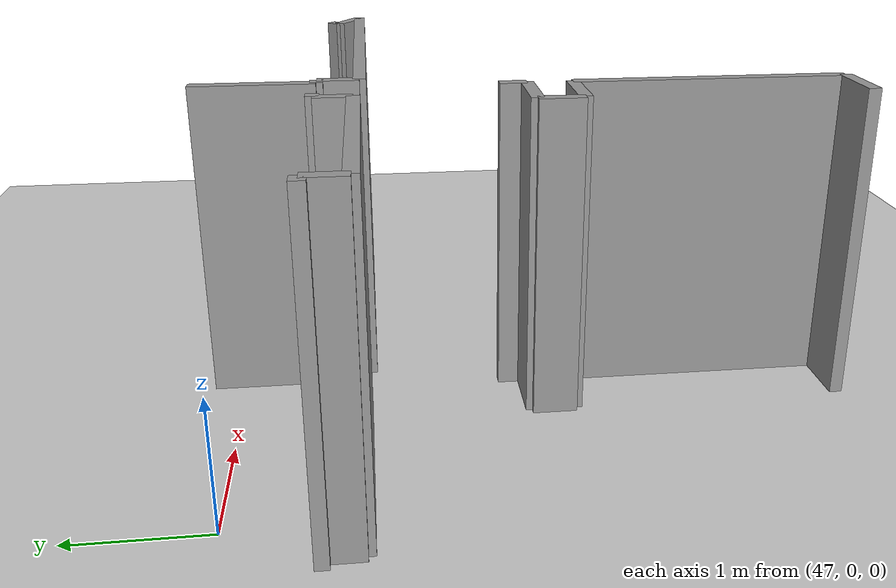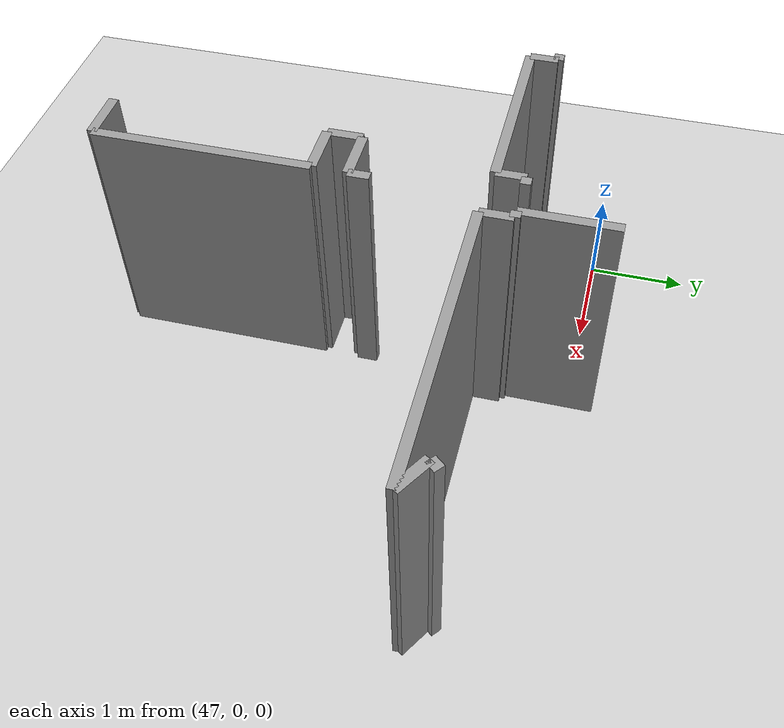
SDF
<sdf version="1.6">
 <world name="default">
  <model name="ground_plane">
   <static>1</static>
   <link name="link">
    <collision name="collision">
     <geometry><plane><normal>0 0 1</normal><size>100 100</size></plane></geometry>
     <surface><friction><ode><mu>100</mu><mu2>50</mu2></ode></friction></surface>
    </collision>
    <visual name="visual">
     <cast_shadows>0</cast_shadows>
     <geometry><plane><normal>0 0 1</normal><size>100 100</size></plane></geometry>
     <material>
      <script><uri>file://media/materials/scripts/gazebo.material</uri><name>Gazebo/Grey</name></script>
     </material>
    </visual>
   </link>
  </model>
  <model name="50010541">
   <static>1</static>
   <link name="Wall_264">
    <collision name="Wall_264_Collision">
     <geometry><box><size>2.94771050995 0.1 2.5</size></box></geometry>
     <pose>1.47385525497 0 1.25 0 0 0</pose>
    </collision>
    <visual name="Wall_264_Visual">
     <pose>1.47385525497 0 1.25 0 0 0</pose>
     <geometry><box><size>2.94771050995 0.1 2.5</size></box></geometry>
     <material>
      <script><uri>file://media/materials/scripts/gazebo.material</uri><name>Gazebo/Grey</name></script>
      <ambient>1 1 1 1</ambient>
     </material>
    </visual>
    <pose>104.962487147 -14.0648445533 0 0 0 3.14159265359</pose>
   </link>
   <link name="Wall_265">
    <collision name="Wall_265_Collision">
     <geometry><box><size>0.321049090424 0.1 2.5</size></box></geometry>
     <pose>0.160524545212 0 1.25 0 0 0</pose>
    </collision>
    <visual name="Wall_265_Visual">
     <pose>0.160524545212 0 1.25 0 0 0</pose>
     <geometry><box><size>0.321049090424 0.1 2.5</size></box></geometry>
     <material>
      <script><uri>file://media/materials/scripts/gazebo.material</uri><name>Gazebo/Grey</name></script>
      <ambient>1 1 1 1</ambient>
     </material>
    </visual>
    <pose>102.014776637 -14.0648445533 0 0 0 1.57079632679</pose>
   </link>
   <link name="Wall_266">
    <collision name="Wall_266_Collision">
     <geometry><box><size>0.0875934647658 0.1 2.5</size></box></geometry>
     <pose>0.0437967323829 0 1.25 0 0 0</pose>
    </collision>
    <visual name="Wall_266_Visual">
     <pose>0.0437967323829 0 1.25 0 0 0</pose>
     <geometry><box><size>0.0875934647658 0.1 2.5</size></box></geometry>
     <material>
      <script><uri>file://media/materials/scripts/gazebo.material</uri><name>Gazebo/Grey</name></script>
      <ambient>1 1 1 1</ambient>
     </material>
    </visual>
    <pose>102.014776637 -13.7437954629 0 0 0 3.14159265359</pose>
   </link>
   <link name="Wall_267">
    <collision name="Wall_267_Collision">
     <geometry><box><size>0.940423749254 0.1 2.5</size></box></geometry>
     <pose>0.470211874627 0 1.25 0 0 0</pose>
    </collision>
    <visual name="Wall_267_Visual">
     <pose>0.470211874627 0 1.25 0 0 0</pose>
     <geometry><box><size>0.940423749254 0.1 2.5</size></box></geometry>
     <material>
      <script><uri>file://media/materials/scripts/gazebo.material</uri><name>Gazebo/Grey</name></script>
      <ambient>1 1 1 1</ambient>
     </material>
    </visual>
    <pose>101.927183172 -13.7437954629 0 0 0 1.57079632679</pose>
   </link>
   <link name="Wall_270">
    <collision name="Wall_270_Collision">
     <geometry><box><size>0.100288169804 0.1 2.5</size></box></geometry>
     <pose>0.0501440849022 0 1.25 0 0 0</pose>
    </collision>
    <visual name="Wall_270_Visual">
     <pose>0.0501440849022 0 1.25 0 0 0</pose>
     <geometry><box><size>0.100288169804 0.1 2.5</size></box></geometry>
     <material>
      <script><uri>file://media/materials/scripts/gazebo.material</uri><name>Gazebo/Grey</name></script>
      <ambient>1 1 1 1</ambient>
     </material>
    </visual>
    <pose>101.566653549 -13.7312277049 0 0 0 3.14159265359</pose>
   </link>
   <link name="Wall_271">
    <collision name="Wall_271_Collision">
     <geometry><box><size>0.290327904231 0.1 2.5</size></box></geometry>
     <pose>0.145163952116 0 1.25 0 0 0</pose>
    </collision>
    <visual name="Wall_271_Visual">
     <pose>0.145163952116 0 1.25 0 0 0</pose>
     <geometry><box><size>0.290327904231 0.1 2.5</size></box></geometry>
     <material>
      <script><uri>file://media/materials/scripts/gazebo.material</uri><name>Gazebo/Grey</name></script>
      <ambient>1 1 1 1</ambient>
     </material>
    </visual>
    <pose>101.466365379 -13.7312277049 0 0 0 -1.57079632679</pose>
   </link>
   <link name="Wall_272">
    <collision name="Wall_272_Collision">
     <geometry><box><size>1.84327117159 0.1 2.5</size></box></geometry>
     <pose>0.921635585797 0 1.25 0 0 0</pose>
    </collision>
    <visual name="Wall_272_Visual">
     <pose>0.921635585797 0 1.25 0 0 0</pose>
     <geometry><box><size>1.84327117159 0.1 2.5</size></box></geometry>
     <material>
      <script><uri>file://media/materials/scripts/gazebo.material</uri><name>Gazebo/Grey</name></script>
      <ambient>1 1 1 1</ambient>
     </material>
    </visual>
    <pose>101.466365379 -14.0215556092 0 0 0 3.14159265359</pose>
   </link>
   <link name="Wall_273">
    <collision name="Wall_273_Collision">
     <geometry><box><size>0.283980551712 0.1 2.5</size></box></geometry>
     <pose>0.141990275856 0 1.25 0 0 0</pose>
    </collision>
    <visual name="Wall_273_Visual">
     <pose>0.141990275856 0 1.25 0 0 0</pose>
     <geometry><box><size>0.283980551712 0.1 2.5</size></box></geometry>
     <material>
      <script><uri>file://media/materials/scripts/gazebo.material</uri><name>Gazebo/Grey</name></script>
      <ambient>1 1 1 1</ambient>
     </material>
    </visual>
    <pose>99.6230942074 -14.0215556092 0 0 0 1.57079632679</pose>
   </link>
   <link name="Wall_274">
    <collision name="Wall_274_Collision">
     <geometry><box><size>0.101557640308 0.1 2.5</size></box></geometry>
     <pose>0.0507788201541 0 1.25 0 0 0</pose>
    </collision>
    <visual name="Wall_274_Visual">
     <pose>0.0507788201541 0 1.25 0 0 0</pose>
     <geometry><box><size>0.101557640308 0.1 2.5</size></box></geometry>
     <material>
      <script><uri>file://media/materials/scripts/gazebo.material</uri><name>Gazebo/Grey</name></script>
      <ambient>1 1 1 1</ambient>
     </material>
    </visual>
    <pose>99.6230942074 -13.7375750574 0 0 0 3.14159265359</pose>
   </link>
   <link name="Wall_368">
    <collision name="Wall_368_Collision">
     <geometry><box><size>0.111535031161 0.1 2.5</size></box></geometry>
     <pose>0.0557675155805 0 1.25 0 0 0</pose>
    </collision>
    <visual name="Wall_368_Visual">
     <pose>0.0557675155805 0 1.25 0 0 0</pose>
     <geometry><box><size>0.111535031161 0.1 2.5</size></box></geometry>
     <material>
      <script><uri>file://media/materials/scripts/gazebo.material</uri><name>Gazebo/Grey</name></script>
      <ambient>1 1 1 1</ambient>
     </material>
    </visual>
    <pose>104.716209869 -13.7853071484 0 0 0 -2.26189136641</pose>
   </link>
   <link name="Wall_369">
    <collision name="Wall_369_Collision">
     <geometry><box><size>0.371753876044 0.1 2.5</size></box></geometry>
     <pose>0.185876938022 0 1.25 0 0 0</pose>
    </collision>
    <visual name="Wall_369_Visual">
     <pose>0.185876938022 0 1.25 0 0 0</pose>
     <geometry><box><size>0.371753876044 0.1 2.5</size></box></geometry>
     <material>
      <script><uri>file://media/materials/scripts/gazebo.material</uri><name>Gazebo/Grey</name></script>
      <ambient>1 1 1 1</ambient>
     </material>
    </visual>
    <pose>104.645119521 -13.8712503015 0 0 0 -0.547740013716</pose>
   </link>
   <link name="Wall_401">
    <collision name="Wall_401_Collision">
     <geometry><box><size>0.210224315438 0.1 2.5</size></box></geometry>
     <pose>0.105112157719 0 1.25 0 0 0</pose>
    </collision>
    <visual name="Wall_401_Visual">
     <pose>0.105112157719 0 1.25 0 0 0</pose>
     <geometry><box><size>0.210224315438 0.1 2.5</size></box></geometry>
     <material>
      <script><uri>file://media/materials/scripts/gazebo.material</uri><name>Gazebo/Grey</name></script>
      <ambient>1 1 1 1</ambient>
     </material>
    </visual>
    <pose>101.781194064 -15.1011133256 0 0 0 -1.57079632679</pose>
   </link>
   <link name="Wall_402">
    <collision name="Wall_402_Collision">
     <geometry><box><size>0.517943965572 0.1 2.5</size></box></geometry>
     <pose>0.258971982786 0 1.25 0 0 0</pose>
    </collision>
    <visual name="Wall_402_Visual">
     <pose>0.258971982786 0 1.25 0 0 0</pose>
     <geometry><box><size>0.517943965572 0.1 2.5</size></box></geometry>
     <material>
      <script><uri>file://media/materials/scripts/gazebo.material</uri><name>Gazebo/Grey</name></script>
      <ambient>1 1 1 1</ambient>
     </material>
    </visual>
    <pose>101.781194064 -15.3113376411 0 0 0 3.14159265359</pose>
   </link>
   <link name="Wall_403">
    <collision name="Wall_403_Collision">
     <geometry><box><size>0.345549871149 0.1 2.5</size></box></geometry>
     <pose>0.172774935574 0 1.25 0 0 0</pose>
    </collision>
    <visual name="Wall_403_Visual">
     <pose>0.172774935574 0 1.25 0 0 0</pose>
     <geometry><box><size>0.345549871149 0.1 2.5</size></box></geometry>
     <material>
      <script><uri>file://media/materials/scripts/gazebo.material</uri><name>Gazebo/Grey</name></script>
      <ambient>1 1 1 1</ambient>
     </material>
    </visual>
    <pose>101.263250098 -15.3113376411 0 0 0 -1.57079632679</pose>
   </link>
   <link name="Wall_404">
    <collision name="Wall_404_Collision">
     <geometry><box><size>0.507788201541 0.1 2.5</size></box></geometry>
     <pose>0.253894100771 0 1.25 0 0 0</pose>
    </collision>
    <visual name="Wall_404_Visual">
     <pose>0.253894100771 0 1.25 0 0 0</pose>
     <geometry><box><size>0.507788201541 0.1 2.5</size></box></geometry>
     <material>
      <script><uri>file://media/materials/scripts/gazebo.material</uri><name>Gazebo/Grey</name></script>
      <ambient>1 1 1 1</ambient>
     </material>
    </visual>
    <pose>101.263250098 -15.6568875122 0 0 0 0.0</pose>
   </link>
   <link name="Wall_405">
    <collision name="Wall_405_Collision">
     <geometry><box><size>2.1405811636 0.1 2.5</size></box></geometry>
     <pose>1.0702905818 0 1.25 0 0 0</pose>
    </collision>
    <visual name="Wall_405_Visual">
     <pose>1.0702905818 0 1.25 0 0 0</pose>
     <geometry><box><size>2.1405811636 0.1 2.5</size></box></geometry>
     <material>
      <script><uri>file://media/materials/scripts/gazebo.material</uri><name>Gazebo/Grey</name></script>
      <ambient>1 1 1 1</ambient>
     </material>
    </visual>
    <pose>101.7710383 -15.6568875122 0 0 0 -1.57079632679</pose>
   </link>
   <link name="Wall_406">
    <collision name="Wall_406_Collision">
     <geometry><box><size>0.502710319526 0.1 2.5</size></box></geometry>
     <pose>0.251355159763 0 1.25 0 0 0</pose>
    </collision>
    <visual name="Wall_406_Visual">
     <pose>0.251355159763 0 1.25 0 0 0</pose>
     <geometry><box><size>0.502710319526 0.1 2.5</size></box></geometry>
     <material>
      <script><uri>file://media/materials/scripts/gazebo.material</uri><name>Gazebo/Grey</name></script>
      <ambient>1 1 1 1</ambient>
     </material>
    </visual>
    <pose>101.7710383 -17.7974686758 0 0 0 3.14159265359</pose>
   </link>
   <pose>-52.95 13.0612481434 0 0 0 0</pose>
  </model>
 </world>
</sdf>
